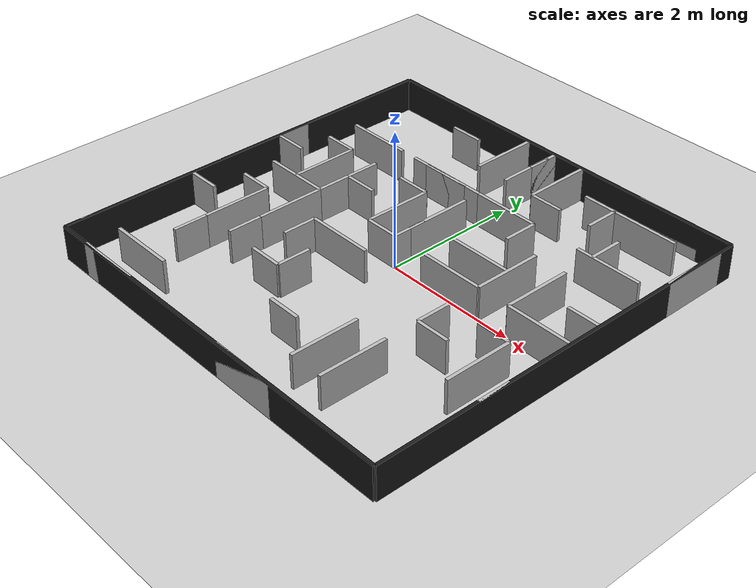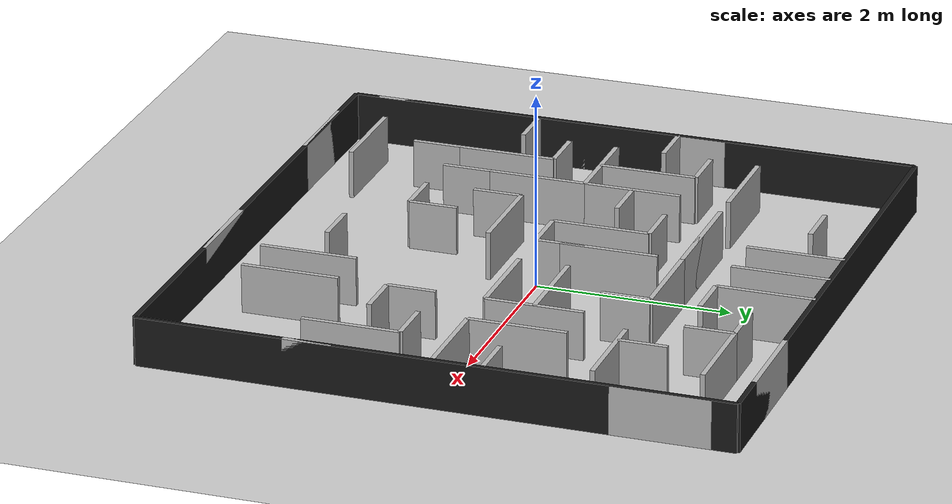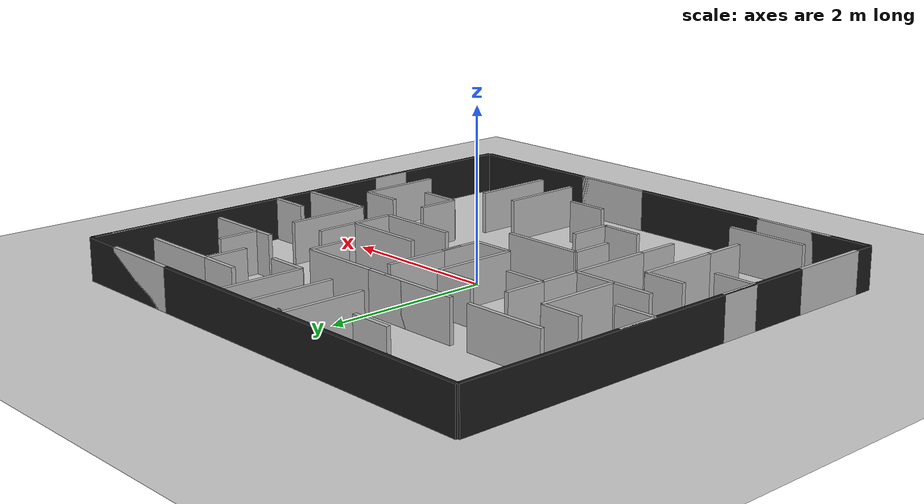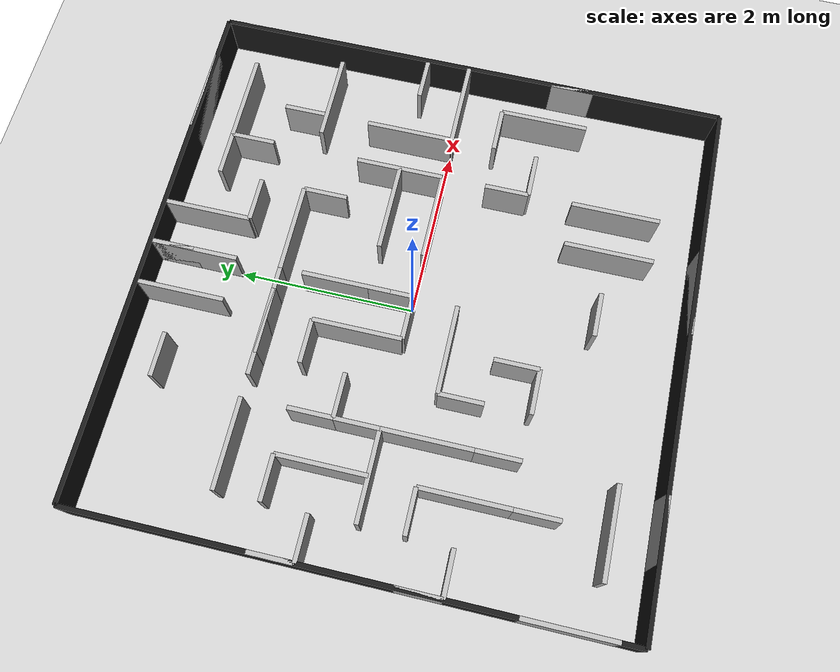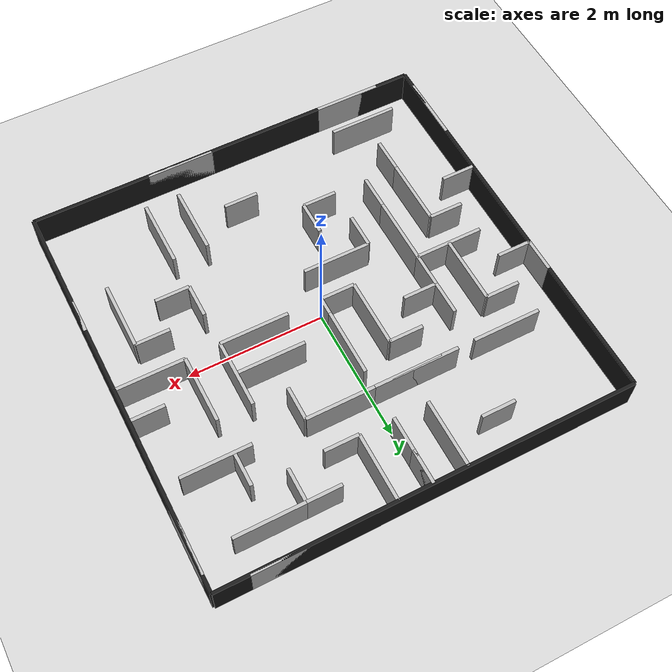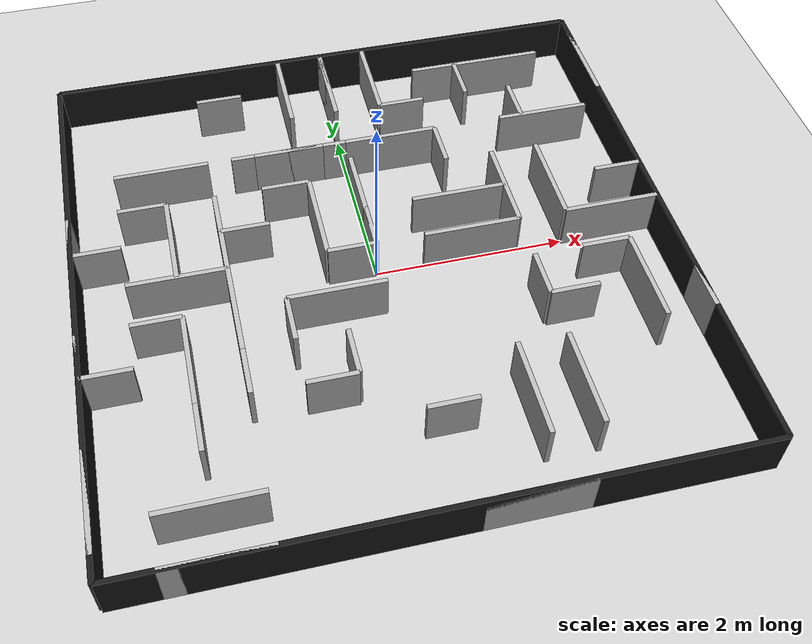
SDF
<sdf version="1.8">
 <world name="maze_world">
  <physics type="ode">
   <max_step_size>0.01</max_step_size>
   <real_time_factor>1</real_time_factor>
   <real_time_update_rate>100</real_time_update_rate>
   <ode>
    <solver>
     <type>quick</type>
     <iters>75</iters>
     <precon_iters>0</precon_iters>
     <sor>1.400000</sor>
     <use_dynamic_moi_rescaling>1</use_dynamic_moi_rescaling>
    </solver>
    <constraints>
     <cfm>0.00001</cfm>
     <erp>0.2</erp>
     <contact_max_correcting_vel>2000.000000</contact_max_correcting_vel>
     <contact_surface_layer>0.01000</contact_surface_layer>
    </constraints>
   </ode>
  </physics>
  <plugin filename="gz-sim-physics-system" name="gz::sim::systems::Physics"/>
  <plugin filename="gz-sim-user-commands-system" name="gz::sim::systems::UserCommands"/>
  <plugin filename="gz-sim-scene-broadcaster-system" name="gz::sim::systems::SceneBroadcaster"/>
  <plugin filename="gz-sim-sensors-system" name="gz::sim::systems::Sensors">
   <render_engine>ogre2</render_engine>
  </plugin>
  <plugin filename="gz-sim-imu-system" name="gz::sim::systems::Imu"/>
  <include><uri>https://fuel.gazebosim.org/1.0/OpenRobotics/models/Ground Plane</uri></include>
  <include><uri>https://fuel.gazebosim.org/1.0/OpenRobotics/models/Sun</uri></include>
  <model name="border_N">
   <static>true</static>
   <pose>0.0 3.0 0.25 0 0 0</pose>
   <link name="link">
    <collision name="col"><geometry><box><size>6.0 0.05 0.5</size></box></geometry></collision>
    <visual name="vis">
     <geometry><box><size>6.0 0.05 0.5</size></box></geometry>
     <material><ambient>0.1 0.1 0.1 1</ambient><diffuse>0.1 0.1 0.1 1</diffuse></material>
    </visual>
   </link>
  </model>
  <model name="border_S">
   <static>true</static>
   <pose>0.0 -3.0 0.25 0 0 0</pose>
   <link name="link">
    <collision name="col"><geometry><box><size>6.0 0.05 0.5</size></box></geometry></collision>
    <visual name="vis">
     <geometry><box><size>6.0 0.05 0.5</size></box></geometry>
     <material><ambient>0.1 0.1 0.1 1</ambient><diffuse>0.1 0.1 0.1 1</diffuse></material>
    </visual>
   </link>
  </model>
  <model name="border_W">
   <static>true</static>
   <pose>-3.0 0.0 0.25 0 0 1.5708</pose>
   <link name="link">
    <collision name="col"><geometry><box><size>6.0 0.05 0.5</size></box></geometry></collision>
    <visual name="vis">
     <geometry><box><size>6.0 0.05 0.5</size></box></geometry>
     <material><ambient>0.1 0.1 0.1 1</ambient><diffuse>0.1 0.1 0.1 1</diffuse></material>
    </visual>
   </link>
  </model>
  <model name="border_E">
   <static>true</static>
   <pose>3.0 0.0 0.25 0 0 1.5708</pose>
   <link name="link">
    <collision name="col"><geometry><box><size>6.0 0.05 0.5</size></box></geometry></collision>
    <visual name="vis">
     <geometry><box><size>6.0 0.05 0.5</size></box></geometry>
     <material><ambient>0.1 0.1 0.1 1</ambient><diffuse>0.1 0.1 0.1 1</diffuse></material>
    </visual>
   </link>
  </model>
  <include><uri>model://pattern2</uri><name>patternI_1</name><pose>2.25 2.25 0.0 0 0 0</pose></include>
  <include><uri>model://pattern2</uri><name>patternI_2</name><pose>2.25 0.75 0.0 0 0 1.5708</pose></include>
  <include><uri>model://pattern1</uri><name>patternI_3</name><pose>0.75 2.25 0.0 0 0 -1.5708</pose></include>
  <include><uri>model://pattern2</uri><name>patternI_4</name><pose>0.75 0.75 0.0 0 0 3.1416</pose></include>
  <include><uri>model://pattern1</uri><name>patternII_2</name><pose>-2.25 0.75 0.0 0 0 1.5708</pose></include>
  <include><uri>model://pattern2</uri><name>patternII_3</name><pose>-0.75 2.25 0.0 0 0 -1.5708</pose></include>
  <include><uri>model://pattern1</uri><name>patternII_4</name><pose>-0.75 0.75 0.0 0 0 1.5708</pose></include>
  <include><uri>model://pattern2</uri><name>patternIII_1</name><pose>-2.25 -2.25 0.0 0 0 3.1416</pose></include>
  <include><uri>model://pattern1</uri><name>patternIII_2</name><pose>-2.25 -0.75 0.0 0 0 1.5708</pose></include>
  <include><uri>model://pattern1</uri><name>patternIII_4</name><pose>-0.75 -0.75 0.0 0 0 3.1416</pose></include>
  <include><uri>model://pattern1</uri><name>patternIV_2</name><pose>2.25 -0.75 0.0 0 0 1.5708</pose></include>
  <include><uri>model://pattern2</uri><name>patternIV_3</name><pose>0.75 -2.25 0.0 0 0 -1.5708</pose></include>
 </world>
</sdf>

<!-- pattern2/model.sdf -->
<sdf version="1.8">
  <model name="pattern2">
    <static>true</static>

    <link name="wall_1">
      <pose>-0.25 0.25 0.25 0 0 0</pose>   <!-- x y z roll pitch yaw -->
      <collision name="col">
        <geometry><box><size>1.0 0.05 0.5</size></box></geometry>
      </collision>
      <visual name="vis">
        <geometry><box><size>1.0 0.05 0.5</size></box></geometry>
      </visual>
    </link>

    <link name="wall_2">
      <pose>-0.25 0.75 0.25 0 0 0</pose>   <!-- x y z roll pitch yaw -->
      <collision name="col">
        <geometry><box><size>1.0 0.05 0.5</size></box></geometry>
      </collision>
      <visual name="vis">
        <geometry><box><size>1.0 0.05 0.5</size></box></geometry>
      </visual>
    </link>
    <link name="wall_3">
      <pose>-0.25 -0.5 0.25 0 0 1.5708</pose>
      <collision name="col">
        <geometry><box><size>0.5 0.05 0.5</size></box></geometry>
      </collision>
      <visual name="vis">
        <geometry><box><size>0.5 0.05 0.5</size></box></geometry>
      </visual>
    </link>

    <link name="wall_4">
      <pose>0.75 0.0 0.25 0 0 1.5708</pose>
      <collision name="col">
        <geometry><box><size>1.0 0.05 0.5</size></box></geometry>
      </collision>
      <visual name="vis">
        <geometry><box><size>1.0 0.05 0.5</size></box></geometry>
      </visual>
    </link>
    </model>
</sdf>

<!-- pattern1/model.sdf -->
<sdf version="1.8">
  <model name="pattern1">
    <static>true</static>

    <link name="wall_1">
      <pose>-0.25 -0.25 0.25 0 0 0</pose>   <!-- x y z roll pitch yaw -->
      <collision name="col">
        <geometry><box><size>1.0 0.05 0.5</size></box></geometry>
      </collision>
      <visual name="vis">
        <geometry><box><size>1.0 0.05 0.5</size></box></geometry>
      </visual>
    </link>

    <link name="wall_2">
      <pose>-0.5 -0.75 0.25 0 0 0</pose>   <!-- x y z roll pitch yaw -->
      <collision name="col">
        <geometry><box><size>0.5 0.05 0.5</size></box></geometry>
      </collision>
      <visual name="vis">
        <geometry><box><size>0.5 0.05 0.5</size></box></geometry>
      </visual>
    </link>

    <link name="wall_3">
      <pose>0.0 0.75 0.25 0 0 0</pose>   <!-- x y z roll pitch yaw -->
      <collision name="col">
        <geometry><box><size>0.5 0.05 0.5</size></box></geometry>
      </collision>
      <visual name="vis">
        <geometry><box><size>0.5 0.05 0.5</size></box></geometry>
      </visual>
    </link>

    <link name="wall_4">
      <pose>-0.25 0.5 0.25 0 0 1.5708</pose>
      <collision name="col">
        <geometry><box><size>0.5 0.05 0.5</size></box></geometry>
      </collision>
      <visual name="vis">
        <geometry><box><size>0.5 0.05 0.5</size></box></geometry>
      </visual>
    </link>

    <link name="wall_5">
      <pose>0.25 0.0 0.25 0 0 1.5708</pose>
      <collision name="col">
        <geometry><box><size>0.5 0.05 0.5</size></box></geometry>
      </collision>
      <visual name="vis">
        <geometry><box><size>0.5 0.05 0.5</size></box></geometry>
      </visual>

    </link>
    <link name="wall_6">
      <pose>0.75 -0.25 0.25 0 0 1.5708</pose>
      <collision name="col">
        <geometry><box><size>1.0 0.05 0.5</size></box></geometry>
      </collision>
      <visual name="vis">
        <geometry><box><size>1.0 0.05 0.5</size></box></geometry>
      </visual>
    </link>

  </model>
</sdf>
